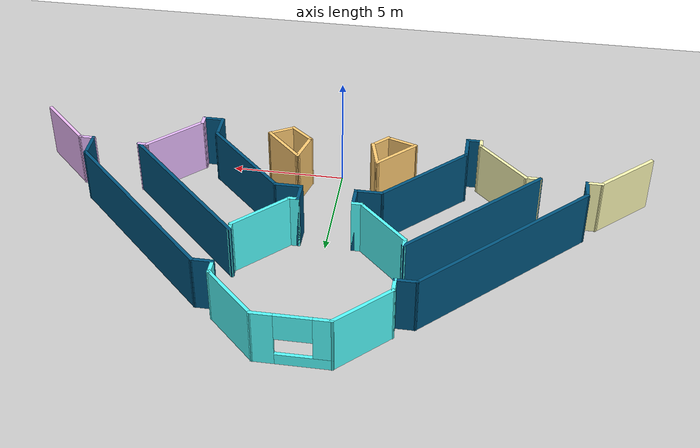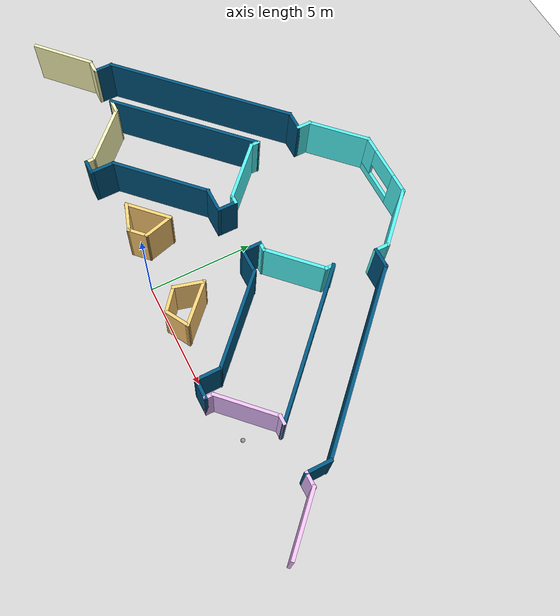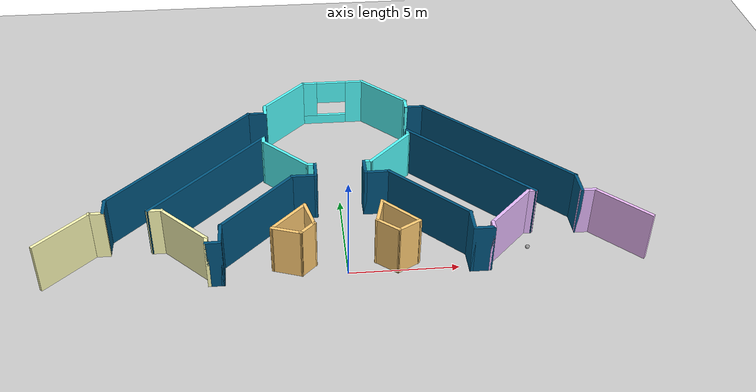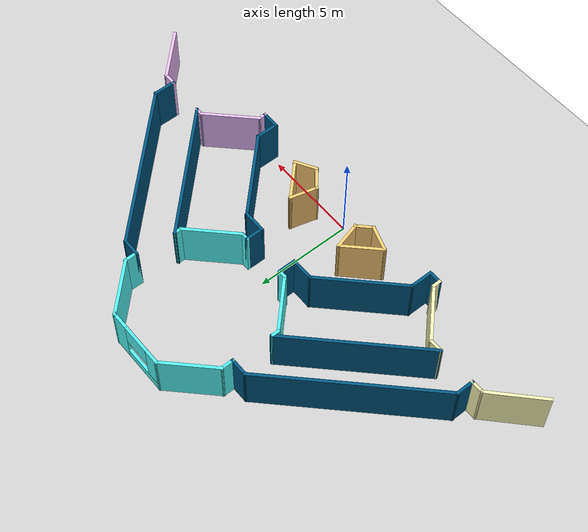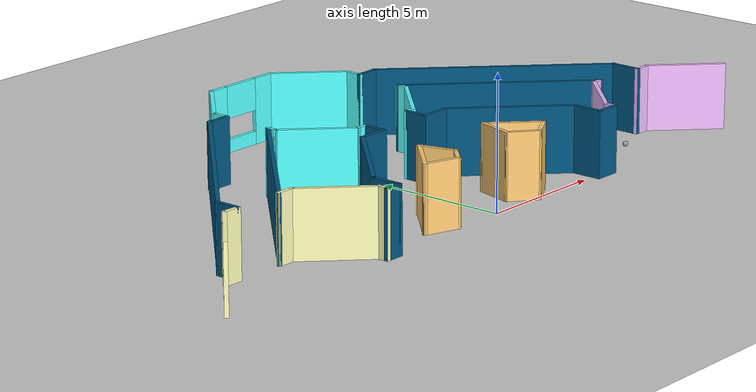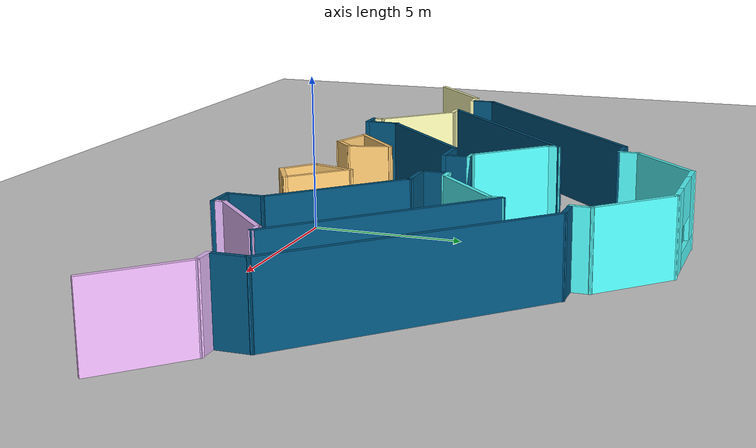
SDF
<sdf version="1.6">
 <world name="default">
  <model name="ground_plane">
   <static>1</static>
   <link name="link">
    <collision name="collision">
     <geometry><plane><normal>0 0 1</normal><size>100 100</size></plane></geometry>
     <surface>
      <contact><collide_bitmask>65535</collide_bitmask></contact>
      <friction><ode><mu>100</mu><mu2>50</mu2></ode></friction>
     </surface>
    </collision>
    <visual name="visual">
     <cast_shadows>0</cast_shadows>
     <geometry><plane><normal>0 0 1</normal><size>100 100</size></plane></geometry>
     <material>
      <script><uri>file://media/materials/scripts/gazebo.material</uri><name>Gazebo/Grey</name></script>
     </material>
    </visual>
   </link>
  </model>
  <model name="building">
   <pose>-0.001846 -1.5065 0 0 -0 0</pose>
   <link name="Wall_0">
    <collision name="Wall_0_Collision">
     <geometry><box><size>2.25 0.15 2.5</size></box></geometry>
     <pose>0 0 1.25 0 -0 0</pose>
    </collision>
    <visual name="Wall_0_Visual">
     <pose>0 0 1.25 0 -0 0</pose>
     <geometry><box><size>2.25 0.15 2.5</size></box></geometry>
     <material>
      <script><uri>file://media/materials/scripts/gazebo.material</uri><name>Gazebo/Grey</name></script>
      <ambient>1 0.8 0.454902 1</ambient>
     </material>
     <meta><layer>0</layer></meta>
    </visual>
    <pose>-2.5367 2.70977 0 0 -0 0.785398</pose>
   </link>
   <link name="Wall_1">
    <collision name="Wall_1_Collision">
     <geometry><box><size>1.5 0.15 2.5</size></box></geometry>
     <pose>0 0 1.25 0 -0 0</pose>
    </collision>
    <visual name="Wall_1_Visual">
     <pose>0 0 1.25 0 -0 0</pose>
     <geometry><box><size>1.5 0.15 2.5</size></box></geometry>
     <material>
      <script><uri>file://media/materials/scripts/gazebo.material</uri><name>Gazebo/Grey</name></script>
      <ambient>1 0.8 0.454902 1</ambient>
     </material>
     <meta><layer>0</layer></meta>
    </visual>
    <pose>-1.61953 2.80023 0 0 0 -1.309</pose>
   </link>
   <link name="Wall_100">
    <collision name="Wall_100_Collision">
     <geometry><box><size>0.75 0.15 2.5</size></box></geometry>
     <pose>0 0 1.25 0 -0 0</pose>
    </collision>
    <visual name="Wall_100_Visual">
     <pose>0 0 1.25 0 -0 0</pose>
     <geometry><box><size>0.75 0.15 2.5</size></box></geometry>
     <material>
      <script><uri>file://media/materials/scripts/gazebo.material</uri><name>Gazebo/Grey</name></script>
      <ambient>0.333333 1 1 1</ambient>
     </material>
     <meta><layer>0</layer></meta>
    </visual>
    <pose>3.70542 11.1499 0 0 -0 1.5708</pose>
   </link>
   <link name="Wall_101">
    <collision name="Wall_101_Collision">
     <geometry><box><size>3 0.15 2.5</size></box></geometry>
     <pose>0 0 1.25 0 -0 0</pose>
    </collision>
    <visual name="Wall_101_Visual">
     <pose>0 0 1.25 0 -0 0</pose>
     <geometry><box><size>3 0.15 2.5</size></box></geometry>
     <material>
      <script><uri>file://media/materials/scripts/gazebo.material</uri><name>Gazebo/Grey</name></script>
      <ambient>0.333333 1 1 1</ambient>
     </material>
     <meta><layer>0</layer></meta>
    </visual>
    <pose>2.69779 12.4576 0 0 -0 2.35619</pose>
   </link>
   <link name="Wall_102">
    <pose>0.140165 13.4652 0 0 -0 3.14159</pose>
    <visual name="Wall_102_Visual_0">
     <pose>-1.15171 0 1.25 0 -0 0</pose>
     <geometry><box><size>0.946574 0.15 2.5</size></box></geometry>
     <material>
      <script><uri>file://media/materials/scripts/gazebo.material</uri><name>Gazebo/Grey</name></script>
      <ambient>0.333333 1 1 1</ambient>
     </material>
     <meta><layer>0</layer></meta>
    </visual>
    <collision name="Wall_102_Collision_0">
     <geometry><box><size>0.946574 0.15 2.5</size></box></geometry>
     <pose>-1.15171 0 1.25 0 -0 0</pose>
    </collision>
    <visual name="Wall_102_Visual_1">
     <pose>0.473287 0 0.25 0 -0 0</pose>
     <geometry><box><size>2.30343 0.15 0.5</size></box></geometry>
     <material>
      <script><uri>file://media/materials/scripts/gazebo.material</uri><name>Gazebo/Grey</name></script>
      <ambient>0.333333 1 1 1</ambient>
     </material>
     <meta><layer>0</layer></meta>
    </visual>
    <collision name="Wall_102_Collision_1">
     <geometry><box><size>2.30343 0.15 0.5</size></box></geometry>
     <pose>0.473287 0 0.25 0 -0 0</pose>
    </collision>
    <visual name="Wall_102_Visual_2">
     <pose>1.22329 0 1.5 0 -0 0</pose>
     <geometry><box><size>0.803426 0.15 2</size></box></geometry>
     <material>
      <script><uri>file://media/materials/scripts/gazebo.material</uri><name>Gazebo/Grey</name></script>
      <ambient>0.333333 1 1 1</ambient>
     </material>
     <meta><layer>0</layer></meta>
    </visual>
    <collision name="Wall_102_Collision_2">
     <geometry><box><size>0.803426 0.15 2</size></box></geometry>
     <pose>1.22329 0 1.5 0 -0 0</pose>
    </collision>
    <visual name="Wall_102_Visual_3">
     <pose>0.071574 0 1.9 0 -0 0</pose>
     <geometry><box><size>1.5 0.15 1.2</size></box></geometry>
     <material>
      <script><uri>file://media/materials/scripts/gazebo.material</uri><name>Gazebo/Grey</name></script>
      <ambient>0.333333 1 1 1</ambient>
     </material>
     <meta><layer>0</layer></meta>
    </visual>
    <collision name="Wall_102_Collision_3">
     <geometry><box><size>1.5 0.15 1.2</size></box></geometry>
     <pose>0.071574 0 1.9 0 -0 0</pose>
    </collision>
   </link>
   <link name="Wall_103">
    <collision name="Wall_103_Collision">
     <geometry><box><size>3 0.15 2.5</size></box></geometry>
     <pose>0 0 1.25 0 -0 0</pose>
    </collision>
    <visual name="Wall_103_Visual">
     <pose>0 0 1.25 0 -0 0</pose>
     <geometry><box><size>3 0.15 2.5</size></box></geometry>
     <material>
      <script><uri>file://media/materials/scripts/gazebo.material</uri><name>Gazebo/Grey</name></script>
      <ambient>0.333333 1 1 1</ambient>
     </material>
     <meta><layer>0</layer></meta>
    </visual>
    <pose>-2.41746 12.4576 0 0 0 -2.35619</pose>
   </link>
   <link name="Wall_104">
    <collision name="Wall_104_Collision">
     <geometry><box><size>0.75 0.15 2.5</size></box></geometry>
     <pose>0 0 1.25 0 -0 0</pose>
    </collision>
    <visual name="Wall_104_Visual">
     <pose>0 0 1.25 0 -0 0</pose>
     <geometry><box><size>0.75 0.15 2.5</size></box></geometry>
     <material>
      <script><uri>file://media/materials/scripts/gazebo.material</uri><name>Gazebo/Grey</name></script>
      <ambient>0.333333 1 1 1</ambient>
     </material>
     <meta><layer>0</layer></meta>
    </visual>
    <pose>-3.42509 11.1499 0 0 0 -1.5708</pose>
   </link>
   <link name="Wall_105">
    <collision name="Wall_105_Collision">
     <geometry><box><size>1 0.15 2.5</size></box></geometry>
     <pose>0 0 1.25 0 -0 0</pose>
    </collision>
    <visual name="Wall_105_Visual">
     <pose>0 0 1.25 0 -0 0</pose>
     <geometry><box><size>1 0.15 2.5</size></box></geometry>
     <material>
      <script><uri>file://media/materials/scripts/gazebo.material</uri><name>Gazebo/Grey</name></script>
      <ambient>0 0.333333 0.498039 1</ambient>
     </material>
     <meta><layer>0</layer></meta>
    </visual>
    <pose>-3.85009 10.8499 0 0 -0 3.14159</pose>
   </link>
   <link name="Wall_106">
    <collision name="Wall_106_Collision">
     <geometry><box><size>9.25 0.15 2.5</size></box></geometry>
     <pose>0 0 1.25 0 -0 0</pose>
    </collision>
    <visual name="Wall_106_Visual">
     <pose>0 0 1.25 0 -0 0</pose>
     <geometry><box><size>9.25 0.15 2.5</size></box></geometry>
     <material>
      <script><uri>file://media/materials/scripts/gazebo.material</uri><name>Gazebo/Grey</name></script>
      <ambient>0 0.333333 0.498039 1</ambient>
     </material>
     <meta><layer>0</layer></meta>
    </visual>
    <pose>-7.49242 7.63259 0 0 0 -2.35619</pose>
   </link>
   <link name="Wall_107">
    <collision name="Wall_107_Collision">
     <geometry><box><size>1 0.15 2.5</size></box></geometry>
     <pose>0 0 1.25 0 -0 0</pose>
    </collision>
    <visual name="Wall_107_Visual">
     <pose>0 0 1.25 0 -0 0</pose>
     <geometry><box><size>1 0.15 2.5</size></box></geometry>
     <material>
      <script><uri>file://media/materials/scripts/gazebo.material</uri><name>Gazebo/Grey</name></script>
      <ambient>0 0.333333 0.498039 1</ambient>
     </material>
     <meta><layer>0</layer></meta>
    </visual>
    <pose>-10.7098 3.99025 0 0 0 -1.5708</pose>
   </link>
   <link name="Wall_108">
    <collision name="Wall_108_Collision">
     <geometry><box><size>0.75 0.15 2.5</size></box></geometry>
     <pose>0 0 1.25 0 -0 0</pose>
    </collision>
    <visual name="Wall_108_Visual">
     <pose>0 0 1.25 0 -0 0</pose>
     <geometry><box><size>0.75 0.15 2.5</size></box></geometry>
     <material>
      <script><uri>file://media/materials/scripts/gazebo.material</uri><name>Gazebo/Grey</name></script>
      <ambient>1 0.992157 0.717647 1</ambient>
     </material>
     <meta><layer>0</layer></meta>
    </visual>
    <pose>-11.0098 3.56525 0 0 -0 3.14159</pose>
   </link>
   <link name="Wall_109">
    <collision name="Wall_109_Collision">
     <geometry><box><size>3.07414 0.15 2.5</size></box></geometry>
     <pose>0 0 1.25 0 -0 0</pose>
    </collision>
    <visual name="Wall_109_Visual">
     <pose>0 0 1.25 0 -0 0</pose>
     <geometry><box><size>3.07414 0.15 2.5</size></box></geometry>
     <material>
      <script><uri>file://media/materials/scripts/gazebo.material</uri><name>Gazebo/Grey</name></script>
      <ambient>1 0.992157 0.717647 1</ambient>
     </material>
     <meta><layer>0</layer></meta>
    </visual>
    <pose>-12.3692 2.55763 0 0 0 -2.38124</pose>
   </link>
   <link name="Wall_2">
    <collision name="Wall_2_Collision">
     <geometry><box><size>1 0.15 2.5</size></box></geometry>
     <pose>0 0 1.25 0 -0 0</pose>
    </collision>
    <visual name="Wall_2_Visual">
     <pose>0 0 1.25 0 -0 0</pose>
     <geometry><box><size>1 0.15 2.5</size></box></geometry>
     <material>
      <script><uri>file://media/materials/scripts/gazebo.material</uri><name>Gazebo/Grey</name></script>
      <ambient>1 0.8 0.454902 1</ambient>
     </material>
     <meta><layer>0</layer></meta>
    </visual>
    <pose>-1.74535 1.84771 0 0 0 -2.35619</pose>
   </link>
   <link name="Wall_3">
    <collision name="Wall_3_Collision">
     <geometry><box><size>1.45288 0.15 2.5</size></box></geometry>
     <pose>0 0 1.25 0 -0 0</pose>
    </collision>
    <visual name="Wall_3_Visual">
     <pose>0 0 1.25 0 -0 0</pose>
     <geometry><box><size>1.45288 0.15 2.5</size></box></geometry>
     <material>
      <script><uri>file://media/materials/scripts/gazebo.material</uri><name>Gazebo/Grey</name></script>
      <ambient>1 0.8 0.454902 1</ambient>
     </material>
     <meta><layer>0</layer></meta>
    </visual>
    <pose>-2.66252 1.75725 0 0 -0 2.81327</pose>
   </link>
   <link name="Wall_35">
    <collision name="Wall_35_Collision">
     <geometry><box><size>0.5 0.15 2.5</size></box></geometry>
     <pose>0 0 1.25 0 -0 0</pose>
    </collision>
    <visual name="Wall_35_Visual">
     <pose>0 0 1.25 0 -0 0</pose>
     <geometry><box><size>0.5 0.15 2.5</size></box></geometry>
     <material>
      <script><uri>file://media/materials/scripts/gazebo.material</uri><name>Gazebo/Grey</name></script>
      <ambient>0.333333 1 1 1</ambient>
     </material>
     <meta><layer>0</layer></meta>
    </visual>
    <pose>1.3119 6.45658 0 0 -0 3.14159</pose>
   </link>
   <link name="Wall_36">
    <collision name="Wall_36_Collision">
     <geometry><box><size>1 0.15 2.5</size></box></geometry>
     <pose>0 0 1.25 0 -0 0</pose>
    </collision>
    <visual name="Wall_36_Visual">
     <pose>0 0 1.25 0 -0 0</pose>
     <geometry><box><size>1 0.15 2.5</size></box></geometry>
     <material>
      <script><uri>file://media/materials/scripts/gazebo.material</uri><name>Gazebo/Grey</name></script>
      <ambient>0 0.333333 0.498039 1</ambient>
     </material>
     <meta><layer>0</layer></meta>
    </visual>
    <pose>1.1369 6.03158 0 0 0 -1.5708</pose>
   </link>
   <link name="Wall_37">
    <collision name="Wall_37_Collision">
     <geometry><box><size>1.25 0.15 2.5</size></box></geometry>
     <pose>0 0 1.25 0 -0 0</pose>
    </collision>
    <visual name="Wall_37_Visual">
     <pose>0 0 1.25 0 -0 0</pose>
     <geometry><box><size>1.25 0.15 2.5</size></box></geometry>
     <material>
      <script><uri>file://media/materials/scripts/gazebo.material</uri><name>Gazebo/Grey</name></script>
      <ambient>0 0.333333 0.498039 1</ambient>
     </material>
     <meta><layer>0</layer></meta>
    </visual>
    <pose>1.6869 5.60658 0 0 -0 0</pose>
   </link>
   <link name="Wall_38">
    <collision name="Wall_38_Collision">
     <geometry><box><size>4.75 0.15 2.5</size></box></geometry>
     <pose>0 0 1.25 0 -0 0</pose>
    </collision>
    <visual name="Wall_38_Visual">
     <pose>0 0 1.25 0 -0 0</pose>
     <geometry><box><size>4.75 0.15 2.5</size></box></geometry>
     <material>
      <script><uri>file://media/materials/scripts/gazebo.material</uri><name>Gazebo/Grey</name></script>
      <ambient>0 0.333333 0.498039 1</ambient>
     </material>
     <meta><layer>0</layer></meta>
    </visual>
    <pose>3.86324 3.98024 0 0 0 -0.785398</pose>
   </link>
   <link name="Wall_39">
    <collision name="Wall_39_Collision">
     <geometry><box><size>1.25 0.15 2.5</size></box></geometry>
     <pose>0 0 1.25 0 -0 0</pose>
    </collision>
    <visual name="Wall_39_Visual">
     <pose>0 0 1.25 0 -0 0</pose>
     <geometry><box><size>1.25 0.15 2.5</size></box></geometry>
     <material>
      <script><uri>file://media/materials/scripts/gazebo.material</uri><name>Gazebo/Grey</name></script>
      <ambient>0 0.333333 0.498039 1</ambient>
     </material>
     <meta><layer>0</layer></meta>
    </visual>
    <pose>5.48959 1.80389 0 0 0 -1.5708</pose>
   </link>
   <link name="Wall_42">
    <collision name="Wall_42_Collision">
     <geometry><box><size>1 0.15 2.5</size></box></geometry>
     <pose>0 0 1.25 0 -0 0</pose>
    </collision>
    <visual name="Wall_42_Visual">
     <pose>0 0 1.25 0 -0 0</pose>
     <geometry><box><size>1 0.15 2.5</size></box></geometry>
     <material>
      <script><uri>file://media/materials/scripts/gazebo.material</uri><name>Gazebo/Grey</name></script>
      <ambient>0 0.333333 0.498039 1</ambient>
     </material>
     <meta><layer>0</layer></meta>
    </visual>
    <pose>5.91459 1.25389 0 0 -0 0</pose>
   </link>
   <link name="Wall_43">
    <collision name="Wall_43_Collision">
     <geometry><box><size>0.5 0.15 2.5</size></box></geometry>
     <pose>0 0 1.25 0 -0 0</pose>
    </collision>
    <visual name="Wall_43_Visual">
     <pose>0 0 1.25 0 -0 0</pose>
     <geometry><box><size>0.5 0.15 2.5</size></box></geometry>
     <material>
      <script><uri>file://media/materials/scripts/gazebo.material</uri><name>Gazebo/Grey</name></script>
      <ambient>0.913725 0.737255 1 1</ambient>
     </material>
     <meta><layer>0</layer></meta>
    </visual>
    <pose>6.33959 1.42889 0 0 -0 1.5708</pose>
   </link>
   <link name="Wall_45">
    <collision name="Wall_45_Collision">
     <geometry><box><size>0.5 0.15 2.5</size></box></geometry>
     <pose>0 0 1.25 0 -0 0</pose>
    </collision>
    <visual name="Wall_45_Visual">
     <pose>0 0 1.25 0 -0 0</pose>
     <geometry><box><size>0.5 0.15 2.5</size></box></geometry>
     <material>
      <script><uri>file://media/materials/scripts/gazebo.material</uri><name>Gazebo/Grey</name></script>
      <ambient>0.333333 1 1 1</ambient>
     </material>
     <meta><layer>0</layer></meta>
    </visual>
    <pose>-1.34508 6.41032 0 0 -0 0</pose>
   </link>
   <link name="Wall_46">
    <collision name="Wall_46_Collision">
     <geometry><box><size>1 0.15 2.5</size></box></geometry>
     <pose>0 0 1.25 0 -0 0</pose>
    </collision>
    <visual name="Wall_46_Visual">
     <pose>0 0 1.25 0 -0 0</pose>
     <geometry><box><size>1 0.15 2.5</size></box></geometry>
     <material>
      <script><uri>file://media/materials/scripts/gazebo.material</uri><name>Gazebo/Grey</name></script>
      <ambient>0 0.333333 0.498039 1</ambient>
     </material>
     <meta><layer>0</layer></meta>
    </visual>
    <pose>-1.17008 5.98532 0 0 0 -1.5708</pose>
   </link>
   <link name="Wall_47">
    <collision name="Wall_47_Collision">
     <geometry><box><size>1.25 0.15 2.5</size></box></geometry>
     <pose>0 0 1.25 0 -0 0</pose>
    </collision>
    <visual name="Wall_47_Visual">
     <pose>0 0 1.25 0 -0 0</pose>
     <geometry><box><size>1.25 0.15 2.5</size></box></geometry>
     <material>
      <script><uri>file://media/materials/scripts/gazebo.material</uri><name>Gazebo/Grey</name></script>
      <ambient>0 0.333333 0.498039 1</ambient>
     </material>
     <meta><layer>0</layer></meta>
    </visual>
    <pose>-1.72008 5.56032 0 0 -0 3.14159</pose>
   </link>
   <link name="Wall_48">
    <collision name="Wall_48_Collision">
     <geometry><box><size>4.75 0.15 2.5</size></box></geometry>
     <pose>0 0 1.25 0 -0 0</pose>
    </collision>
    <visual name="Wall_48_Visual">
     <pose>0 0 1.25 0 -0 0</pose>
     <geometry><box><size>4.75 0.15 2.5</size></box></geometry>
     <material>
      <script><uri>file://media/materials/scripts/gazebo.material</uri><name>Gazebo/Grey</name></script>
      <ambient>0 0.333333 0.498039 1</ambient>
     </material>
     <meta><layer>0</layer></meta>
    </visual>
    <pose>-3.89643 3.93398 0 0 0 -2.35619</pose>
   </link>
   <link name="Wall_49">
    <collision name="Wall_49_Collision">
     <geometry><box><size>1.25 0.15 2.5</size></box></geometry>
     <pose>0 0 1.25 0 -0 0</pose>
    </collision>
    <visual name="Wall_49_Visual">
     <pose>0 0 1.25 0 -0 0</pose>
     <geometry><box><size>1.25 0.15 2.5</size></box></geometry>
     <material>
      <script><uri>file://media/materials/scripts/gazebo.material</uri><name>Gazebo/Grey</name></script>
      <ambient>0 0.333333 0.498039 1</ambient>
     </material>
     <meta><layer>0</layer></meta>
    </visual>
    <pose>-5.52277 1.75763 0 0 0 -1.5708</pose>
   </link>
   <link name="Wall_5">
    <collision name="Wall_5_Collision">
     <geometry><box><size>1.5 0.15 2.5</size></box></geometry>
     <pose>0 0 1.25 0 -0 0</pose>
    </collision>
    <visual name="Wall_5_Visual">
     <pose>0 0 1.25 0 -0 0</pose>
     <geometry><box><size>1.5 0.15 2.5</size></box></geometry>
     <material>
      <script><uri>file://media/materials/scripts/gazebo.material</uri><name>Gazebo/Grey</name></script>
      <ambient>1 0.8 0.454902 1</ambient>
     </material>
     <meta><layer>0</layer></meta>
    </visual>
    <pose>1.51292 2.79421 0 0 -0 1.309</pose>
   </link>
   <link name="Wall_50">
    <collision name="Wall_50_Collision">
     <geometry><box><size>0.75 0.15 2.5</size></box></geometry>
     <pose>0 0 1.25 0 -0 0</pose>
    </collision>
    <visual name="Wall_50_Visual">
     <pose>0 0 1.25 0 -0 0</pose>
     <geometry><box><size>0.75 0.15 2.5</size></box></geometry>
     <material>
      <script><uri>file://media/materials/scripts/gazebo.material</uri><name>Gazebo/Grey</name></script>
      <ambient>0 0.333333 0.498039 1</ambient>
     </material>
     <meta><layer>0</layer></meta>
    </visual>
    <pose>-5.82277 1.20763 0 0 -0 3.14159</pose>
   </link>
   <link name="Wall_51">
    <collision name="Wall_51_Collision">
     <geometry><box><size>0.5 0.15 2.5</size></box></geometry>
     <pose>0 0 1.25 0 -0 0</pose>
    </collision>
    <visual name="Wall_51_Visual">
     <pose>0 0 1.25 0 -0 0</pose>
     <geometry><box><size>0.5 0.15 2.5</size></box></geometry>
     <material>
      <script><uri>file://media/materials/scripts/gazebo.material</uri><name>Gazebo/Grey</name></script>
      <ambient>1 0.992157 0.717647 1</ambient>
     </material>
     <meta><layer>0</layer></meta>
    </visual>
    <pose>-6.12277 1.38263 0 0 -0 1.5708</pose>
   </link>
   <link name="Wall_52">
    <collision name="Wall_52_Collision">
     <geometry><box><size>3 0.15 2.5</size></box></geometry>
     <pose>0 0 1.25 0 -0 0</pose>
    </collision>
    <visual name="Wall_52_Visual">
     <pose>0 0 1.25 0 -0 0</pose>
     <geometry><box><size>3 0.15 2.5</size></box></geometry>
     <material>
      <script><uri>file://media/materials/scripts/gazebo.material</uri><name>Gazebo/Grey</name></script>
      <ambient>1 0.992157 0.717647 1</ambient>
     </material>
     <meta><layer>0</layer></meta>
    </visual>
    <pose>-7.1304 2.56526 0 0 -0 2.35619</pose>
   </link>
   <link name="Wall_53">
    <collision name="Wall_53_Collision">
     <geometry><box><size>0.75 0.15 2.5</size></box></geometry>
     <pose>0 0 1.25 0 -0 0</pose>
    </collision>
    <visual name="Wall_53_Visual">
     <pose>0 0 1.25 0 -0 0</pose>
     <geometry><box><size>0.75 0.15 2.5</size></box></geometry>
     <material>
      <script><uri>file://media/materials/scripts/gazebo.material</uri><name>Gazebo/Grey</name></script>
      <ambient>1 0.992157 0.717647 1</ambient>
     </material>
     <meta><layer>0</layer></meta>
    </visual>
    <pose>-8.43803 3.57289 0 0 -0 3.14159</pose>
   </link>
   <link name="Wall_54">
    <collision name="Wall_54_Collision">
     <geometry><box><size>7.5 0.15 2.5</size></box></geometry>
     <pose>0 0 1.25 0 -0 0</pose>
    </collision>
    <visual name="Wall_54_Visual">
     <pose>0 0 1.25 0 -0 0</pose>
     <geometry><box><size>7.5 0.15 2.5</size></box></geometry>
     <material>
      <script><uri>file://media/materials/scripts/gazebo.material</uri><name>Gazebo/Grey</name></script>
      <ambient>0 0.333333 0.498039 1</ambient>
     </material>
     <meta><layer>0</layer></meta>
    </visual>
    <pose>-6.13941 6.1715 0 0 -0 0.785398</pose>
   </link>
   <link name="Wall_55">
    <collision name="Wall_55_Collision">
     <geometry><box><size>0.5 0.15 2.5</size></box></geometry>
     <pose>0 0 1.25 0 -0 0</pose>
    </collision>
    <visual name="Wall_55_Visual">
     <pose>0 0 1.25 0 -0 0</pose>
     <geometry><box><size>0.5 0.15 2.5</size></box></geometry>
     <material>
      <script><uri>file://media/materials/scripts/gazebo.material</uri><name>Gazebo/Grey</name></script>
      <ambient>0.333333 1 1 1</ambient>
     </material>
     <meta><layer>0</layer></meta>
    </visual>
    <pose>-3.54079 8.59512 0 0 0 -1.5708</pose>
   </link>
   <link name="Wall_56">
    <collision name="Wall_56_Collision">
     <geometry><box><size>3.00001 0.15 2.5</size></box></geometry>
     <pose>0 0 1.25 0 -0 0</pose>
    </collision>
    <visual name="Wall_56_Visual">
     <pose>0 0 1.25 0 -0 0</pose>
     <geometry><box><size>3.00001 0.15 2.5</size></box></geometry>
     <material>
      <script><uri>file://media/materials/scripts/gazebo.material</uri><name>Gazebo/Grey</name></script>
      <ambient>0.333333 1 1 1</ambient>
     </material>
     <meta><layer>0</layer></meta>
    </visual>
    <pose>-2.53044 7.41522 0 0 0 -0.782691</pose>
   </link>
   <link name="Wall_58">
    <collision name="Wall_58_Collision">
     <geometry><box><size>3 0.15 2.5</size></box></geometry>
     <pose>0 0 1.25 0 -0 0</pose>
    </collision>
    <visual name="Wall_58_Visual">
     <pose>0 0 1.25 0 -0 0</pose>
     <geometry><box><size>3 0.15 2.5</size></box></geometry>
     <material>
      <script><uri>file://media/materials/scripts/gazebo.material</uri><name>Gazebo/Grey</name></script>
      <ambient>0.333333 1 1 1</ambient>
     </material>
     <meta><layer>0</layer></meta>
    </visual>
    <pose>2.49452 7.46421 0 0 -0 0.785398</pose>
   </link>
   <link name="Wall_59">
    <collision name="Wall_59_Collision">
     <geometry><box><size>0.5 0.15 2.5</size></box></geometry>
     <pose>0 0 1.25 0 -0 0</pose>
    </collision>
    <visual name="Wall_59_Visual">
     <pose>0 0 1.25 0 -0 0</pose>
     <geometry><box><size>0.5 0.15 2.5</size></box></geometry>
     <material>
      <script><uri>file://media/materials/scripts/gazebo.material</uri><name>Gazebo/Grey</name></script>
      <ambient>0.333333 1 1 1</ambient>
     </material>
     <meta><layer>0</layer></meta>
    </visual>
    <pose>3.50215 8.64684 0 0 -0 1.5708</pose>
   </link>
   <link name="Wall_6">
    <collision name="Wall_6_Collision">
     <geometry><box><size>2.25 0.15 2.5</size></box></geometry>
     <pose>0 0 1.25 0 -0 0</pose>
    </collision>
    <visual name="Wall_6_Visual">
     <pose>0 0 1.25 0 -0 0</pose>
     <geometry><box><size>2.25 0.15 2.5</size></box></geometry>
     <material>
      <script><uri>file://media/materials/scripts/gazebo.material</uri><name>Gazebo/Grey</name></script>
      <ambient>1 0.8 0.454902 1</ambient>
     </material>
     <meta><layer>0</layer></meta>
    </visual>
    <pose>2.43008 2.70375 0 0 0 -0.785398</pose>
   </link>
   <link name="Wall_60">
    <collision name="Wall_60_Collision">
     <geometry><box><size>7.5 0.15 2.5</size></box></geometry>
     <pose>0 0 1.25 0 -0 0</pose>
    </collision>
    <visual name="Wall_60_Visual">
     <pose>0 0 1.25 0 -0 0</pose>
     <geometry><box><size>7.5 0.15 2.5</size></box></geometry>
     <material>
      <script><uri>file://media/materials/scripts/gazebo.material</uri><name>Gazebo/Grey</name></script>
      <ambient>0 0.333333 0.498039 1</ambient>
     </material>
     <meta><layer>0</layer></meta>
    </visual>
    <pose>6.10077 6.22322 0 0 0 -0.785398</pose>
   </link>
   <link name="Wall_61">
    <collision name="Wall_61_Collision">
     <geometry><box><size>0.5 0.15 2.5</size></box></geometry>
     <pose>0 0 1.25 0 -0 0</pose>
    </collision>
    <visual name="Wall_61_Visual">
     <pose>0 0 1.25 0 -0 0</pose>
     <geometry><box><size>0.5 0.15 2.5</size></box></geometry>
     <material>
      <script><uri>file://media/materials/scripts/gazebo.material</uri><name>Gazebo/Grey</name></script>
      <ambient>0.913725 0.737255 1 1</ambient>
     </material>
     <meta><layer>0</layer></meta>
    </visual>
    <pose>8.52439 3.6246 0 0 -0 3.14159</pose>
   </link>
   <link name="Wall_62">
    <collision name="Wall_62_Collision">
     <geometry><box><size>3.00001 0.15 2.5</size></box></geometry>
     <pose>0 0 1.25 0 -0 0</pose>
    </collision>
    <visual name="Wall_62_Visual">
     <pose>0 0 1.25 0 -0 0</pose>
     <geometry><box><size>3.00001 0.15 2.5</size></box></geometry>
     <material>
      <script><uri>file://media/materials/scripts/gazebo.material</uri><name>Gazebo/Grey</name></script>
      <ambient>0.913725 0.737255 1 1</ambient>
     </material>
     <meta><layer>0</layer></meta>
    </visual>
    <pose>7.34449 2.61425 0 0 0 -2.35349</pose>
   </link>
   <link name="Wall_7">
    <collision name="Wall_7_Collision">
     <geometry><box><size>1.25 0.15 2.5</size></box></geometry>
     <pose>0 0 1.25 0 -0 0</pose>
    </collision>
    <visual name="Wall_7_Visual">
     <pose>0 0 1.25 0 -0 0</pose>
     <geometry><box><size>1.25 0.15 2.5</size></box></geometry>
     <material>
      <script><uri>file://media/materials/scripts/gazebo.material</uri><name>Gazebo/Grey</name></script>
      <ambient>1 0.8 0.454902 1</ambient>
     </material>
     <meta><layer>0</layer></meta>
    </visual>
    <pose>2.69623 1.68628 0 0 0 -2.61799</pose>
   </link>
   <link name="Wall_8">
    <collision name="Wall_8_Collision">
     <geometry><box><size>1.29527 0.15 2.5</size></box></geometry>
     <pose>0 0 1.25 0 -0 0</pose>
    </collision>
    <visual name="Wall_8_Visual">
     <pose>0 0 1.25 0 -0 0</pose>
     <geometry><box><size>1.29527 0.15 2.5</size></box></geometry>
     <material>
      <script><uri>file://media/materials/scripts/gazebo.material</uri><name>Gazebo/Grey</name></script>
      <ambient>1 0.8 0.454902 1</ambient>
     </material>
     <meta><layer>0</layer></meta>
    </visual>
    <pose>1.77906 1.77675 0 0 -0 2.44942</pose>
   </link>
   <link name="Wall_95">
    <collision name="Wall_95_Collision">
     <geometry><box><size>3 0.15 2.5</size></box></geometry>
     <pose>0 0 1.25 0 -0 0</pose>
    </collision>
    <visual name="Wall_95_Visual">
     <pose>0 0 1.25 0 -0 0</pose>
     <geometry><box><size>3 0.15 2.5</size></box></geometry>
     <material>
      <script><uri>file://media/materials/scripts/gazebo.material</uri><name>Gazebo/Grey</name></script>
      <ambient>0.94902 0.741176 1 1</ambient>
     </material>
     <meta><layer>0</layer></meta>
    </visual>
    <pose>12.4209 2.4844 0 0 -0 2.35619</pose>
   </link>
   <link name="Wall_96">
    <collision name="Wall_96_Collision">
     <geometry><box><size>0.75 0.15 2.5</size></box></geometry>
     <pose>0 0 1.25 0 -0 0</pose>
    </collision>
    <visual name="Wall_96_Visual">
     <pose>0 0 1.25 0 -0 0</pose>
     <geometry><box><size>0.75 0.15 2.5</size></box></geometry>
     <material>
      <script><uri>file://media/materials/scripts/gazebo.material</uri><name>Gazebo/Grey</name></script>
      <ambient>0.913725 0.737255 1 1</ambient>
     </material>
     <meta><layer>0</layer></meta>
    </visual>
    <pose>11.1133 3.49203 0 0 -0 3.14159</pose>
   </link>
   <link name="Wall_97">
    <collision name="Wall_97_Collision">
     <geometry><box><size>1.25 0.15 2.5</size></box></geometry>
     <pose>0 0 1.25 0 -0 0</pose>
    </collision>
    <visual name="Wall_97_Visual">
     <pose>0 0 1.25 0 -0 0</pose>
     <geometry><box><size>1.25 0.15 2.5</size></box></geometry>
     <material>
      <script><uri>file://media/materials/scripts/gazebo.material</uri><name>Gazebo/Grey</name></script>
      <ambient>0 0.333333 0.498039 1</ambient>
     </material>
     <meta><layer>0</layer></meta>
    </visual>
    <pose>10.8133 4.04203 0 0 -0 1.5708</pose>
   </link>
   <link name="Wall_98">
    <collision name="Wall_98_Collision">
     <geometry><box><size>9 0.15 2.5</size></box></geometry>
     <pose>0 0 1.25 0 -0 0</pose>
    </collision>
    <visual name="Wall_98_Visual">
     <pose>0 0 1.25 0 -0 0</pose>
     <geometry><box><size>9 0.15 2.5</size></box></geometry>
     <material>
      <script><uri>file://media/materials/scripts/gazebo.material</uri><name>Gazebo/Grey</name></script>
      <ambient>0 0.333333 0.498039 1</ambient>
     </material>
     <meta><layer>0</layer></meta>
    </visual>
    <pose>7.68437 7.72098 0 0 -0 2.35619</pose>
   </link>
   <link name="Wall_99">
    <collision name="Wall_99_Collision">
     <geometry><box><size>1 0.15 2.5</size></box></geometry>
     <pose>0 0 1.25 0 -0 0</pose>
    </collision>
    <visual name="Wall_99_Visual">
     <pose>0 0 1.25 0 -0 0</pose>
     <geometry><box><size>1 0.15 2.5</size></box></geometry>
     <material>
      <script><uri>file://media/materials/scripts/gazebo.material</uri><name>Gazebo/Grey</name></script>
      <ambient>0 0.333333 0.498039 1</ambient>
     </material>
     <meta><layer>0</layer></meta>
    </visual>
    <pose>4.13042 10.8499 0 0 -0 3.14159</pose>
   </link>
   <static>1</static>
  </model>
  <model name="my_ball">
   <link name="link_0">
    <inertial>
     <mass>1</mass>
     <inertia><ixx>0.1</ixx><ixy>0</ixy><ixz>0</ixz><iyy>0.1</iyy><iyz>0</iyz><izz>0.1</izz></inertia>
    </inertial>
    <visual name="visual">
     <geometry><sphere><radius>0.1</radius></sphere></geometry>
     <material>
      <lighting>1</lighting>
      <script><uri>file://media/materials/scripts/gazebo.material</uri><name>Gazebo/Grey</name></script>
      <shader type="pixel"><normal_map>__default__</normal_map></shader>
      <ambient>1 1 1 1</ambient>
      <diffuse>1 1 1 1</diffuse>
      <specular>1 1 1 1</specular>
      <emissive>1 1 1 1</emissive>
     </material>
    </visual>
    <collision name="collision">
     <geometry><sphere><radius>0.1</radius></sphere></geometry>
     <surface>
      <friction>
       <ode><mu>1</mu><mu2>1</mu2><fdir1>0 0 0</fdir1><slip1>0</slip1><slip2>0</slip2></ode>
       <torsional>
        <coefficient>1</coefficient>
        <patch_radius>0</patch_radius>
        <surface_radius>0</surface_radius>
        <use_patch_radius>1</use_patch_radius>
        <ode><slip>0</slip></ode>
       </torsional>
      </friction>
      <bounce><restitution_coefficient>0</restitution_coefficient><threshold>1e+06</threshold></bounce>
      <contact>
       <collide_without_contact>0</collide_without_contact>
       <collide_without_contact_bitmask>1</collide_without_contact_bitmask>
       <collide_bitmask>1</collide_bitmask>
       <ode>
        <soft_cfm>0</soft_cfm>
        <soft_erp>0.2</soft_erp>
        <kp>1e+13</kp>
        <kd>1</kd>
        <max_vel>0.01</max_vel>
        <min_depth>0</min_depth>
       </ode>
       <bullet>
        <split_impulse>1</split_impulse>
        <split_impulse_penetration_threshold>-0.01</split_impulse_penetration_threshold>
        <soft_cfm>0</soft_cfm>
        <soft_erp>0.2</soft_erp>
        <kp>1e+13</kp>
        <kd>1</kd>
       </bullet>
      </contact>
     </surface>
    </collision>
   </link>
   <static>0</static>
   <pose>8.17482 0.556143 0.5 0 -0 0</pose>
  </model>
 </world>
</sdf>
